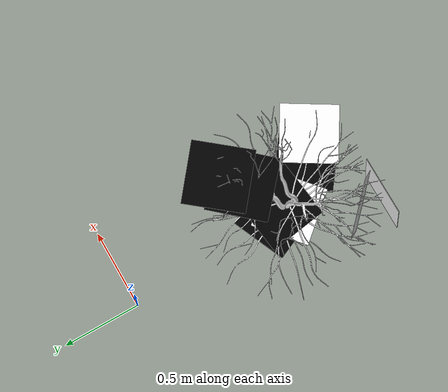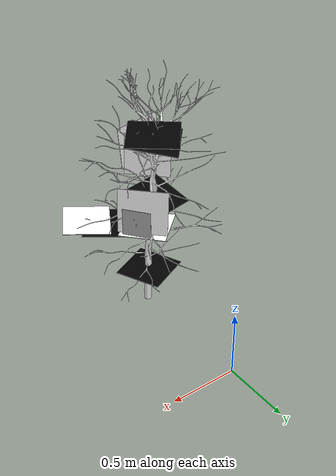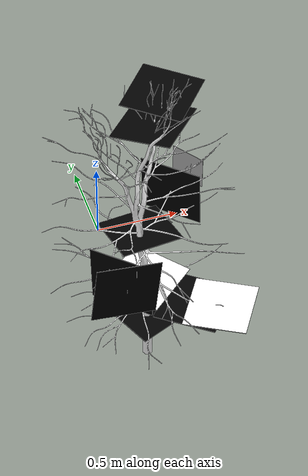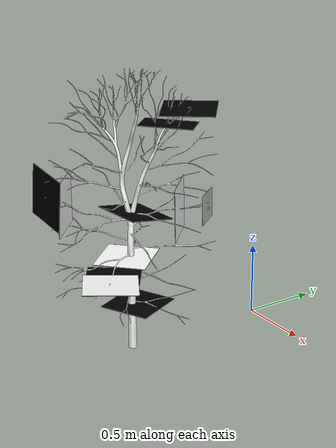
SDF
<?xml version="1.0"?>
<sdf version="1.7">
    <world name="apple_tree_1_marked">

        <plugin filename="gz-sim-physics-system" name="gz::sim::systems::Physics"/>
        <plugin filename="gz-sim-user-commands-system" name="gz::sim::systems::UserCommands"/>
        <plugin filename="gz-sim-scene-broadcaster-system" name="gz::sim::systems::SceneBroadcaster"/>
        <plugin filename="gz-sim-contact-system" name="gz::sim::systems::Contact"/>
        <plugin filename="gz-sim-sensors-system" name="gz::sim::systems::Sensors">
            <render_engine>ogre2</render_engine>
        </plugin>

        <physics type="ode">
            <max_step_size>0.01</max_step_size>
            <real_time_factor>1</real_time_factor>
            <max_contacts>10</max_contacts>
            <real_time_update_rate>1000</real_time_update_rate>
        </physics>

        <gravity>0 0 -9.8</gravity>

        <scene>
            <ambient>0.5 0.5 0.5 1</ambient>
            <background>0.3 0.7 0.9 1</background>
            <grid>false</grid>
            <sky>
                <clouds>
                    <speed>12</speed>
                </clouds>
            </sky>
            <shadows>true</shadows>
        </scene>

        <light name='sun' type='directional'>
            <pose>0 0 10 0 -0 0</pose>
            <cast_shadows>true</cast_shadows>
            <intensity>1</intensity>
            <direction>-0.5 0.1 -0.9</direction>
            <diffuse>0.8 0.8 0.8 1</diffuse>
            <specular>0.2 0.2 0.2 1</specular>
            <attenuation>
                <range>1000</range>
                <linear>0.01</linear>
                <constant>0.90000000000000002</constant>
                <quadratic>0.001</quadratic>
            </attenuation>
            <spot>
                <inner_angle>0</inner_angle>
                <outer_angle>0</outer_angle>
                <falloff>0</falloff>
            </spot>
        </light>

        <!-- Apple tree with crook canker disease -->
        <include>
            <uri>model://apple_tree_1</uri>
            <name>apple_tree_1</name>
            <pose>0 -1.0 0 0 0 1.57</pose>
        </include>

        <!-- Marker 0 (Shepherd's Crook) -->
        <include>
            <uri>model://aruco_marker_0</uri>
            <name>aruco_marker_0</name>
            <pose>0.343228 -0.643121 1.03402 -1.55558 -0.011071 0.628999</pose>
        </include>

        <include>
            <uri>model://aruco_marker_1</uri>
            <name>aruco_marker_1</name>
            <pose>0.182457 -0.673761 1.64442 -1.56529 -0.006847 0.893469</pose>
        </include>

        <include>
            <uri>model://aruco_marker_2</uri>
            <name>aruco_marker_2</name>
            <pose>0.305773 -1.34692 0.649004 1.58527 0.051949 2.59898</pose>
        </include>

        <include>
            <uri>model://aruco_marker_3</uri>
            <name>aruco_marker_3</name>
            <pose>-0.261027 -1.47089 1.07722 0 -1.4676 0</pose>
        </include>

        <!-- Marker 1 (Canker) -->
        <include>
            <uri>model://aruco_marker_4</uri>
            <name>aruco_marker_4</name>
            <pose>0.01458 -0.964314 0.316333 -1.56173 -0.004042 0.419401</pose>
        </include>

        <include>
            <uri>model://aruco_marker_5</uri>
            <name>aruco_marker_5</name>
            <pose>-0.025913 -0.948623 0.938826 -1.76381 0.026249 0.133483</pose>
        </include>

        <include>
            <uri>model://aruco_marker_6</uri>
            <name>aruco_marker_6</name>
            <pose>0.207155 -0.763233 1.00164 2.38125 -1.54404 3.14159</pose>
        </include>

        <include>
            <uri>model://aruco_marker_7</uri>
            <name>aruco_marker_7</name>
            <pose>0.100925 -0.775162 1.54104 -1.71889 0.041302 0.842531</pose>
        </include>

        <include>
            <uri>model://aruco_marker_8</uri>
            <name>aruco_marker_8</name>
            <pose>-0.249998 -1.3433 1.01073 2.38798 -1.54518 3.14159</pose>
        </include>

        <include>
            <uri>model://aruco_marker_9</uri>
            <name>aruco_marker_9</name>
            <pose>-0.01701 -1.02816 0.652782 1.58589 0.017316 -0.853717</pose>
        </include>

        <include>
            <uri>model://aruco_marker_10</uri>
            <name>aruco_marker_10</name>
            <pose>0.183567 -1.25679 0.623852 -1.57007 0.00053 -0.632487</pose>
        </include>
    </world>
</sdf>

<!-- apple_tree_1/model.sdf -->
<sdf version="1.7">
    <model name="apple_tree_1">
        <static>true</static>
<link name="apple_tree_1_link">

            <visual name="apple_tree_1_visual">
                <geometry>
                <mesh>
                    <uri>model://apple_tree_1/meshes/apple_tree_1.obj</uri>
                </mesh>
                </geometry>

                <material>
                    <ambient>0.6 0.6 0.6 1</ambient>
                    <diffuse>1 1 1 1</diffuse>
                    <specular>0.1 0.1 0.1 1</specular>
                    <emissive>0 0 0 1</emissive>

                    <pbr>
                        <metal>
                        <!-- Base color -->
                        <albedo_map>model://apple_tree_1/materials/tree_basecolor_baked.png</albedo_map>

                        <!-- Normal map -->
                        <normal_map>model://apple_tree_1/materials/tree_normal_baked.png</normal_map>

                        <!-- Roughness map (preferred) -->
                        <roughness_map>model://apple_tree_1/materials/tree_roughness_baked.png</roughness_map>

                        <!-- For bark -->
                        <metalness>0.0</metalness>

                        <!-- Optional: if your roughness map is missing/ignored, fallback constant -->
                        </metal>
                    </pbr>
                </material>

            </visual>

            <collision name="apple_tree_1_collision">
                <geometry>
                    <mesh>
                        <uri>model://apple_tree_1/meshes/apple_tree_1.obj</uri>
                    </mesh>
                </geometry>
                <surface>
                <contact>
                    <collide_without_contact>true</collide_without_contact>
                    <collide_bitmask>0x00</collide_bitmask>
                </contact>
                </surface>
            </collision>

        </link>
    </model>
</sdf>

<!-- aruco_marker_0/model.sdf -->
<sdf version='1.6'>
  <model name='aruco_marker_0'>
    <link name='link_0'>
      <pose frame=''>0 0 0 0 -0 0</pose>
      <inertial>
        <mass>1</mass>
        <inertia>
          <ixx>0</ixx>
          <ixy>0</ixy>
          <ixz>0</ixz>
          <iyy>0</iyy>
          <iyz>0</iyz>
          <izz>0</izz>
        </inertia>
      </inertial>
      <visual name='visual'>
        <pose frame=''>0 0 0 0 -0 0</pose>
        <geometry>
          <mesh>
            <uri>file://isr-testbed/aruco_marker_0/aruco_marker_0.dae</uri>
            <scale>0.1 0.1 0.1</scale>
          </mesh>
        </geometry>
        <material>
          <lighting>1</lighting>
          <script>
            <uri>file://media/materials/scripts/gazebo.material</uri>
            <name>Gazebo/DepthMapVS</name>
          </script>
          <ambient>0.3 0.3 0.3 1</ambient>
          <diffuse>0.7 0.7 0.7 1</diffuse>
          <specular>0.01 0.01 0.01 1</specular>
          <emissive>0 0 0 1</emissive>
        </material>
        <transparency>0</transparency>
        <cast_shadows>1</cast_shadows>
      </visual>
      <collision name='collision'>
        <laser_retro>0</laser_retro>
        <max_contacts>10</max_contacts>
        <pose frame=''>0 0 0 0 -0 0</pose>
        <geometry>
          <mesh>
            <uri>file://isr-testbed/aruco_marker_0/aruco_marker_0.dae</uri>
            <scale>0.1 0.1 0.1</scale>
          </mesh>
        </geometry>
        <surface>
          <friction>
            <ode>
              <mu>1</mu>
              <mu2>1</mu2>
              <fdir1>0 0 0</fdir1>
              <slip1>0</slip1>
              <slip2>0</slip2>
            </ode>
            <torsional>
              <coefficient>1</coefficient>
              <patch_radius>0</patch_radius>
              <surface_radius>0</surface_radius>
              <use_patch_radius>1</use_patch_radius>
              <ode>
                <slip>0</slip>
              </ode>
            </torsional>
          </friction>
          <bounce>
            <restitution_coefficient>0</restitution_coefficient>
            <threshold>1e+06</threshold>
          </bounce>
          <contact>
            <collide_without_contact>0</collide_without_contact>
            <collide_without_contact_bitmask>1</collide_without_contact_bitmask>
            <collide_bitmask>1</collide_bitmask>
            <ode>
              <soft_cfm>0</soft_cfm>
              <soft_erp>0.2</soft_erp>
              <kp>1e+13</kp>
              <kd>1</kd>
              <max_vel>0.01</max_vel>
              <min_depth>0</min_depth>
            </ode>
            <bullet>
              <split_impulse>1</split_impulse>
              <split_impulse_penetration_threshold>-0.01</split_impulse_penetration_threshold>
              <soft_cfm>0</soft_cfm>
              <soft_erp>0.2</soft_erp>
              <kp>1e+13</kp>
              <kd>1</kd>
            </bullet>
          </contact>
        </surface>
      </collision>
    </link>
    <static>1</static>
    <allow_auto_disable>1</allow_auto_disable>
  </model>
</sdf>

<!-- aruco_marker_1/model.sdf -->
<sdf version="1.9">
  <model name="aruco_marker_1">
    <static>true</static>

    <link name="link">
      <visual name="front">
        <pose>0 0 0 0 0 0</pose>
        <geometry>
          <box>
            <size>0.35 0.002 0.35</size>
          </box>
        </geometry>

        <material>
          <ambient>1 1 1 1</ambient>
          <diffuse>1 1 1 1</diffuse>
          <specular>0.1 0.1 0.1 1</specular>
          <emissive>0 0 0 1</emissive>

          <pbr>
            <metal>
              <albedo_map>
                model://aruco/aruco_marker_1/materials/textures/marker_1.png
              </albedo_map>
              <emissive_map>
                model://aruco/aruco_marker_1/materials/textures/marker_1.png
              </emissive_map>
            </metal>
          </pbr>
        </material>
      </visual>

      <visual name="back">
        <pose>0 -0.002 0 0 0 3.1416</pose>
        <geometry>
          <box>
            <size>0.35 0.002 0.35</size>
          </box>
        </geometry>
        <material>
          <ambient>0 0 0 1</ambient>
          <diffuse>0 0 0 1</diffuse>
        </material>
      </visual>

    </link>

  </model>
</sdf>

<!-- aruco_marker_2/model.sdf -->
<sdf version="1.9">
  <model name="aruco_marker_2">
    <static>true</static>

    <link name="link">
      <visual name="front">
        <pose>0 0 0 0 0 0</pose>
        <geometry>
          <box>
            <size>0.35 0.002 0.35</size>
          </box>
        </geometry>

        <material>
          <ambient>1 1 1 1</ambient>
          <diffuse>1 1 1 1</diffuse>
          <specular>0.1 0.1 0.1 1</specular>
          <emissive>0 0 0 1</emissive>

          <pbr>
            <metal>
              <albedo_map>
                model://aruco/aruco_marker_2/materials/textures/marker_2.png
              </albedo_map>
              <emissive_map>
                model://aruco/aruco_marker_2/materials/textures/marker_2.png
              </emissive_map>
            </metal>
          </pbr>
        </material>
      </visual>

      <visual name="back">
        <pose>0 -0.002 0 0 0 3.1416</pose>
        <geometry>
          <box>
            <size>0.35 0.002 0.35</size>
          </box>
        </geometry>
        <material>
          <ambient>0 0 0 1</ambient>
          <diffuse>0 0 0 1</diffuse>
        </material>
      </visual>

    </link>

  </model>
</sdf>

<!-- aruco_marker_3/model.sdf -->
<sdf version="1.9">
  <model name="aruco_marker_3">
    <static>true</static>

    <link name="link">
      <visual name="front">
        <pose>0 0 0 0 0 0</pose>
        <geometry>
          <box>
            <size>0.35 0.002 0.35</size>
          </box>
        </geometry>

        <material>
          <ambient>1 1 1 1</ambient>
          <diffuse>1 1 1 1</diffuse>
          <specular>0.1 0.1 0.1 1</specular>
          <emissive>0 0 0 1</emissive>

          <pbr>
            <metal>
              <albedo_map>
                model://aruco/aruco_marker_3/materials/textures/marker_3.png
              </albedo_map>
              <emissive_map>
                model://aruco/aruco_marker_3/materials/textures/marker_3.png
              </emissive_map>
            </metal>
          </pbr>
        </material>
      </visual>

      <visual name="back">
        <pose>0 -0.002 0 0 0 3.1416</pose>
        <geometry>
          <box>
            <size>0.35 0.002 0.35</size>
          </box>
        </geometry>
        <material>
          <ambient>0 0 0 1</ambient>
          <diffuse>0 0 0 1</diffuse>
        </material>
      </visual>

    </link>

  </model>
</sdf>

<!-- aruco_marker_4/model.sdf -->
<sdf version="1.9">
  <model name="aruco_marker_4">
    <static>true</static>

    <link name="link">
      <visual name="front">
        <pose>0 0 0 0 0 0</pose>
        <geometry>
          <box>
            <size>0.35 0.002 0.35</size>
          </box>
        </geometry>

        <material>
          <ambient>1 1 1 1</ambient>
          <diffuse>1 1 1 1</diffuse>
          <specular>0.1 0.1 0.1 1</specular>
          <emissive>0 0 0 1</emissive>

          <pbr>
            <metal>
              <albedo_map>
                model://aruco/aruco_marker_4/materials/textures/marker_4.png
              </albedo_map>
              <emissive_map>
                model://aruco/aruco_marker_4/materials/textures/marker_4.png
              </emissive_map>
            </metal>
          </pbr>
        </material>
      </visual>

      <visual name="back">
        <pose>0 -0.002 0 0 0 3.1416</pose>
        <geometry>
          <box>
            <size>0.35 0.002 0.35</size>
          </box>
        </geometry>
        <material>
          <ambient>0 0 0 1</ambient>
          <diffuse>0 0 0 1</diffuse>
        </material>
      </visual>

    </link>

  </model>
</sdf>

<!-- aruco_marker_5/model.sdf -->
<sdf version="1.9">
  <model name="aruco_marker_5">
    <static>true</static>

    <link name="link">
      <visual name="front">
        <pose>0 0 0 0 0 0</pose>
        <geometry>
          <box>
            <size>0.35 0.002 0.35</size>
          </box>
        </geometry>

        <material>
          <ambient>1 1 1 1</ambient>
          <diffuse>1 1 1 1</diffuse>
          <specular>0.1 0.1 0.1 1</specular>
          <emissive>0 0 0 1</emissive>

          <pbr>
            <metal>
              <albedo_map>
                model://aruco/aruco_marker_5/materials/textures/marker_5.png
              </albedo_map>
              <emissive_map>
                model://aruco/aruco_marker_5/materials/textures/marker_5.png
              </emissive_map>
            </metal>
          </pbr>
        </material>
      </visual>

      <visual name="back">
        <pose>0 -0.002 0 0 0 3.1416</pose>
        <geometry>
          <box>
            <size>0.35 0.002 0.35</size>
          </box>
        </geometry>
        <material>
          <ambient>0 0 0 1</ambient>
          <diffuse>0 0 0 1</diffuse>
        </material>
      </visual>

    </link>

  </model>
</sdf>

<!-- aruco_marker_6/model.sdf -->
<sdf version="1.9">
  <model name="aruco_marker_6">
    <static>true</static>

    <link name="link">
      <visual name="front">
        <pose>0 0 0 0 0 0</pose>
        <geometry>
          <box>
            <size>0.35 0.002 0.35</size>
          </box>
        </geometry>

        <material>
          <ambient>1 1 1 1</ambient>
          <diffuse>1 1 1 1</diffuse>
          <specular>0.1 0.1 0.1 1</specular>
          <emissive>0 0 0 1</emissive>

          <pbr>
            <metal>
              <albedo_map>
                model://aruco/aruco_marker_6/materials/textures/marker_6.png
              </albedo_map>
              <emissive_map>
                model://aruco/aruco_marker_6/materials/textures/marker_6.png
              </emissive_map>
            </metal>
          </pbr>
        </material>
      </visual>

      <visual name="back">
        <pose>0 -0.002 0 0 0 3.1416</pose>
        <geometry>
          <box>
            <size>0.35 0.002 0.35</size>
          </box>
        </geometry>
        <material>
          <ambient>0 0 0 1</ambient>
          <diffuse>0 0 0 1</diffuse>
        </material>
      </visual>

    </link>

  </model>
</sdf>

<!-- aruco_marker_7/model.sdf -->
<sdf version="1.9">
  <model name="aruco_marker_7">
    <static>true</static>

    <link name="link">
      <visual name="front">
        <pose>0 0 0 0 0 0</pose>
        <geometry>
          <box>
            <size>0.35 0.002 0.35</size>
          </box>
        </geometry>

        <material>
          <ambient>1 1 1 1</ambient>
          <diffuse>1 1 1 1</diffuse>
          <specular>0.1 0.1 0.1 1</specular>
          <emissive>0 0 0 1</emissive>

          <pbr>
            <metal>
              <albedo_map>
                model://aruco/aruco_marker_7/materials/textures/marker_7.png
              </albedo_map>
              <emissive_map>
                model://aruco/aruco_marker_7/materials/textures/marker_7.png
              </emissive_map>
            </metal>
          </pbr>
        </material>
      </visual>

      <visual name="back">
        <pose>0 -0.002 0 0 0 3.1416</pose>
        <geometry>
          <box>
            <size>0.35 0.002 0.35</size>
          </box>
        </geometry>
        <material>
          <ambient>0 0 0 1</ambient>
          <diffuse>0 0 0 1</diffuse>
        </material>
      </visual>

    </link>

  </model>
</sdf>

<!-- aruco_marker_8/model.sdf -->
<sdf version="1.9">
  <model name="aruco_marker_8">
    <static>true</static>

    <link name="link">
      <visual name="front">
        <pose>0 0 0 0 0 0</pose>
        <geometry>
          <box>
            <size>0.35 0.002 0.35</size>
          </box>
        </geometry>

        <material>
          <ambient>1 1 1 1</ambient>
          <diffuse>1 1 1 1</diffuse>
          <specular>0.1 0.1 0.1 1</specular>
          <emissive>0 0 0 1</emissive>

          <pbr>
            <metal>
              <albedo_map>
                model://aruco/aruco_marker_8/materials/textures/marker_8.png
              </albedo_map>
              <emissive_map>
                model://aruco/aruco_marker_8/materials/textures/marker_8.png
              </emissive_map>
            </metal>
          </pbr>
        </material>
      </visual>

      <visual name="back">
        <pose>0 -0.002 0 0 0 3.1416</pose>
        <geometry>
          <box>
            <size>0.35 0.002 0.35</size>
          </box>
        </geometry>
        <material>
          <ambient>0 0 0 1</ambient>
          <diffuse>0 0 0 1</diffuse>
        </material>
      </visual>

    </link>

  </model>
</sdf>

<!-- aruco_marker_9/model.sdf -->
<sdf version="1.9">
  <model name="aruco_marker_9">
    <static>true</static>

    <link name="link">
      <visual name="front">
        <pose>0 0 0 0 0 0</pose>
        <geometry>
          <box>
            <size>0.35 0.002 0.35</size>
          </box>
        </geometry>

        <material>
          <ambient>1 1 1 1</ambient>
          <diffuse>1 1 1 1</diffuse>
          <specular>0.1 0.1 0.1 1</specular>
          <emissive>0 0 0 1</emissive>

          <pbr>
            <metal>
              <albedo_map>
                model://aruco/aruco_marker_9/materials/textures/marker_9.png
              </albedo_map>
              <emissive_map>
                model://aruco/aruco_marker_9/materials/textures/marker_9.png
              </emissive_map>
            </metal>
          </pbr>
        </material>
      </visual>

      <visual name="back">
        <pose>0 -0.002 0 0 0 3.1416</pose>
        <geometry>
          <box>
            <size>0.35 0.002 0.35</size>
          </box>
        </geometry>
        <material>
          <ambient>0 0 0 1</ambient>
          <diffuse>0 0 0 1</diffuse>
        </material>
      </visual>

    </link>

  </model>
</sdf>

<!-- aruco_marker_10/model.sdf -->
<sdf version="1.9">
  <model name="aruco_marker_10">
    <static>true</static>

    <link name="link">
      <visual name="front">
        <pose>0 0 0 0 0 0</pose>
        <geometry>
          <box>
            <size>0.35 0.002 0.35</size>
          </box>
        </geometry>

        <material>
          <ambient>1 1 1 1</ambient>
          <diffuse>1 1 1 1</diffuse>
          <specular>0.1 0.1 0.1 1</specular>
          <emissive>0 0 0 1</emissive>

          <pbr>
            <metal>
              <albedo_map>
                model://aruco/aruco_marker_10/materials/textures/marker_10.png
              </albedo_map>
              <emissive_map>
                model://aruco/aruco_marker_10/materials/textures/marker_10.png
              </emissive_map>
            </metal>
          </pbr>
        </material>
      </visual>

      <visual name="back">
        <pose>0 -0.002 0 0 0 3.1416</pose>
        <geometry>
          <box>
            <size>0.35 0.002 0.35</size>
          </box>
        </geometry>
        <material>
          <ambient>0 0 0 1</ambient>
          <diffuse>0 0 0 1</diffuse>
        </material>
      </visual>

    </link>

  </model>
</sdf>
